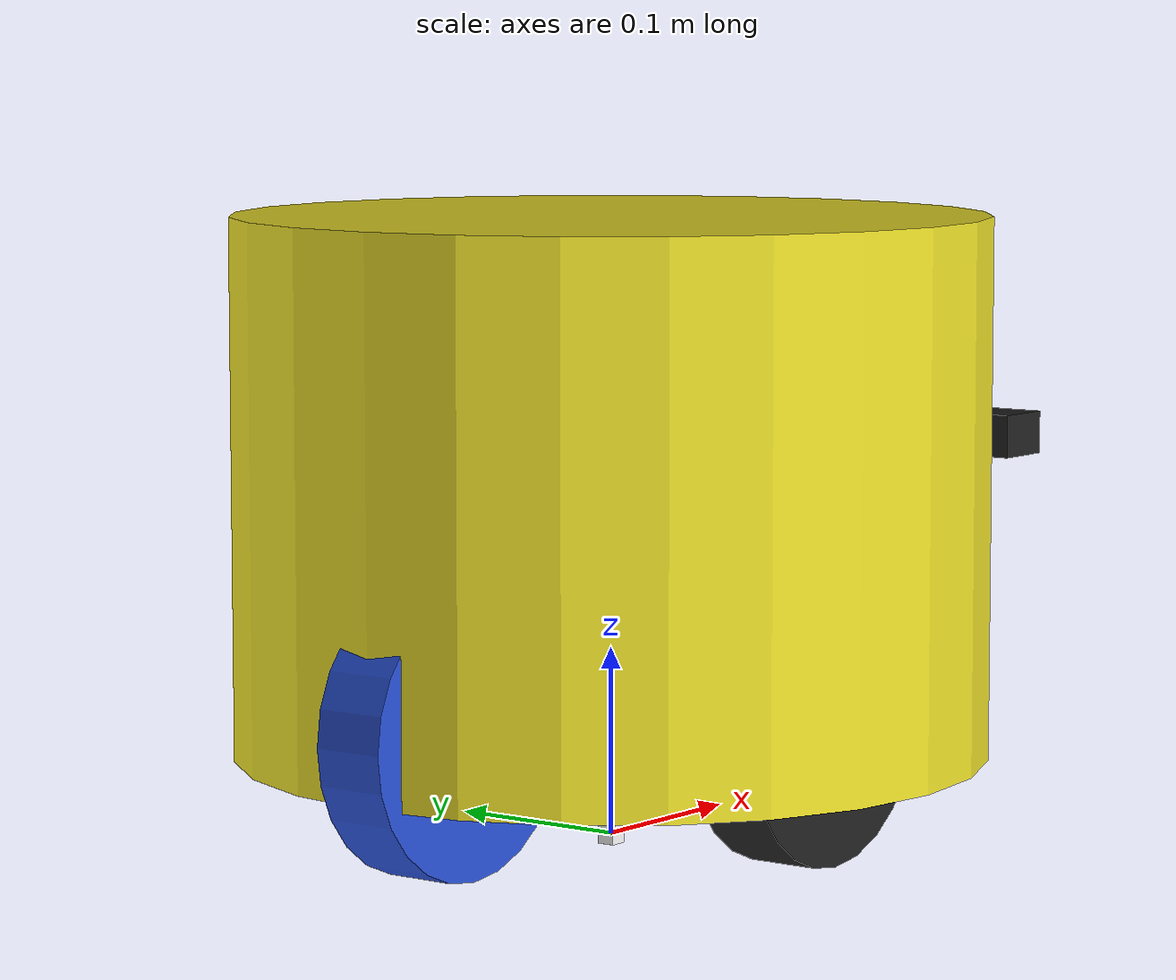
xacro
<?xml version="1.0"?>
<robot name="simple_diff_robot" xmlns:xacro="http://ros.org/wiki/xacro">

  <xacro:include filename="$(find simple_robot_description)/robots/simple_diff_robot.gazebo" />
  <xacro:include filename="$(find simple_robot_description)/robots/simple_diff_robot_materials.xacro" />

  <!-- Constant for the xacro model -->
  <xacro:property name="GROUND_CLEARANCE" value="0.0403"/>
  <xacro:property name="width" value="0.20" />
  <xacro:property name="xpsvwhloffset" value="0.1405" />
  <xacro:property name="yactwhloffset" value="0.2495" />
  <xacro:property name="bodylen" value="0.286" />
  <xacro:property name="wheel_w" value="0.039" />
  <xacro:property name="wheel_rad" value="0.075" />
  <xacro:property name="plat_rad" value="0.185" />
  <xacro:property name="plat_len" value="0.005" />
  <xacro:property name="HIGH_PLATFORM" value="0.286" />
  <xacro:property name="posz_laser" value="0.333" />
  <xacro:property name="posz_camera" value="1.059" />
  <!--xacro:property name="fwheel_rad" value="0.0376094" /-->
  <xacro:property name="fwheel_rad" value="0.075" />
  <xacro:property name="pi" value="3.1415" />

  <!--Mass values for each link in kg-->
  <xacro:property name="base_mass" value="30" />
  <xacro:property name="plat_mass" value="2" />
  <xacro:property name="actvwheel_mass" value="10" />
  <xacro:property name="psvwheel_mass" value="1" />

    <!-- base_footprint is a fictitious link(frame) that is on the ground right below base_link origin,
         navigation stack dedpends on this frame -->
    <link name="base_footprint">
      <visual>
        <origin xyz="0 0 0" rpy="0 0 0" />
        <geometry>
          <box size="0.01 0.01 0.01" />
        </geometry>

        <material name="White" />
      </visual>
    </link>

    <joint name="base_footprint_joint" type="fixed">
      <origin xyz="0 0 ${(bodylen/2)-GROUND_CLEARANCE-0.031+wheel_rad}" rpy="0 0 0" />
      <child link="base_link" />
      <parent link="base_footprint"/>
    </joint>

  <!--Base_link-->
  <link name="base_link">
    <visual>
      <geometry>
         <cylinder length="${bodylen}" radius="${width}"/>
      </geometry>
      <origin rpy="0 0 0" xyz="0 0 ${GROUND_CLEARANCE}"/>
      <!--origin rpy="0 0 0" xyz="0 0 0"/-->
      <material name="yellow"/>
    </visual>
    <collision>
      <geometry>
         <cylinder length="${bodylen}" radius="${width}"/>
      </geometry>
      <origin rpy="0 0 0" xyz="0 0 ${bodylen/2}"/>
    </collision>
    <inertial>
        <mass value="${base_mass}" />
        <origin rpy="0 0 0" xyz="0 0 ${GROUND_CLEARANCE}" />
        <inertia
          ixx="${(1/12) * base_mass * ( 3 * (0.1 * 0.1 + width * width) + bodylen)}" ixy="0.0" ixz="0.0"
          iyy="${(1/12) * base_mass * ( 3 * (0.1 * 0.1 + width * width) + bodylen)}" iyz="0.0"
          izz="${0.5 * base_mass * ( 0.1 * 0.1 + width * width)}" />
    </inertial>
  </link>

  <!--left and right wheel-->
  <xacro:macro name="rl_wheel" params="prefix reflect">
    <link name="${prefix}_wheel">
      <visual>
        <geometry>
          <cylinder length="${wheel_w}" radius="${wheel_rad}"/>
        </geometry>
        <origin rpy="${pi/2} 0 0" xyz="0 0 0"/>
        <material name="black"/>
      </visual>
      <collision>
        <geometry>
          <cylinder length="${wheel_w}" radius="${wheel_rad}"/>
        </geometry>
        <origin rpy="${pi/2} 0 0" xyz="0 0 0"/>
      </collision>
      <inertial>
        <mass value="0.010" />
        <origin rpy="${pi/2} 0 0" xyz="0 0 0" />
        <inertia
          ixx="${(1/12) * actvwheel_mass * (3 * wheel_rad * wheel_rad + wheel_w * wheel_w)}" ixy="0.0" ixz="0.0"
          iyy="${(1/12) * actvwheel_mass * (3 * wheel_rad * wheel_rad + wheel_w * wheel_w)}" iyz="0.0"
          izz="${0.5 * actvwheel_mass * wheel_rad * wheel_rad }" />
      </inertial>
    </link>
    <joint name="${prefix}_wheel_joint" type="continuous">
      <parent link="base_link"/>
      <child link="${prefix}_wheel"/>
      <axis xyz="0 1 0"/>
	  <origin xyz="0 ${-yactwhloffset*reflect/2} ${-(bodylen/2)+GROUND_CLEARANCE+0.031}" rpy="0 0 0"/>
    </joint>
    <transmission name="${prefix}_wheel_trans" type="SimpleTransmission">
      <type>transmission_interface/SimpleTransmission</type>
      <actuator name="${prefix}_wheel_motor">
        <mechanicalReduction>1</mechanicalReduction>
        <hardwareInterface>VelocityJointInterface</hardwareInterface>
      </actuator>
      <joint name="${prefix}_wheel_joint">
        <hardwareInterface>VelocityJointInterface</hardwareInterface>
      </joint>
    </transmission>
  </xacro:macro>
  <xacro:rl_wheel prefix="right" reflect="1" />
  <xacro:rl_wheel prefix="left" reflect="-1" />

  <!--front and back wheel-->
  <xacro:macro name="fb_wheel" params="prefix reflect">
    <link name="${prefix}_wheel">
      <visual>
        <geometry>
          <cylinder length="${wheel_w}" radius="${fwheel_rad}"/>
        </geometry>
        <origin rpy="${pi/2} 0 0" xyz="0 0 0"/>
        <material name="blue"/>
      </visual>
      <collision>
        <geometry>
          <cylinder length="${wheel_w}" radius="${fwheel_rad}"/>
        </geometry>
        <origin rpy="${pi/2} 0 0" xyz="0 0 0"/>
      </collision>
      <inertial>
        <mass value="0.010" />
        <origin rpy="${pi/2} 0 0" xyz="0 0 0" />
        <inertia
          ixx="${(1/12) * psvwheel_mass * (3 * fwheel_rad * fwheel_rad + wheel_w * wheel_w)}" ixy="0.0" ixz="0.0"
          iyy="${(1/12) * psvwheel_mass * (3 * fwheel_rad * fwheel_rad + wheel_w * wheel_w)}" iyz="0.0"
          izz="${0.5 * psvwheel_mass * fwheel_rad * fwheel_rad }" />
      </inertial>
    </link>
    <joint name="${prefix}_wheel_joint" type="continuous">
      <parent link="base_link"/>
      <child link="${prefix}_wheel"/>
      <axis xyz="0 1 0"/>
	  <!--origin xyz="${xpsvwhloffset*reflect} 0 ${ -(bodylen/2) + 0.02786}" rpy="0 0 0"/-->
	  <origin xyz="${xpsvwhloffset*reflect} 0 ${-(bodylen/2)+GROUND_CLEARANCE+0.031}" rpy="0 0 0"/>
    </joint>
    <transmission name="${prefix}_wheel_trans" type="SimpleTransmission">
      <type>transmission_interface/SimpleTransmission</type>
      <actuator name="${prefix}_wheel_motor">
        <mechanicalReduction>1</mechanicalReduction>
        <hardwareInterface>VelocityJointInterface</hardwareInterface>
      </actuator>
      <joint name="${prefix}_wheel_joint">
        <hardwareInterface>VelocityJointInterface</hardwareInterface>
      </joint>
    </transmission>
  </xacro:macro>
  <xacro:fb_wheel prefix="front" reflect="1"/>
  <xacro:fb_wheel prefix="back" reflect="-1"/>

  <!--CAMERA-->
  <link name="camera_link">
    <visual>
      <geometry>
        <box size="0.035 0.178 0.024"/>
      </geometry>
      <origin rpy="0 0 0" xyz="0 0 0"/>
      <material name="black"/>
    </visual>
    <collision>
      <origin xyz="0 0 0" rpy="0 0 0" />
      <geometry>
          <box size="0.035 0.185 0.025"/>
      </geometry>
    </collision>
    <inertial>
        <mass value="0.200" />
        <origin xyz="0 0 0" />
        <inertia ixx="5.8083e-4" ixy="0" ixz="0"
                 iyy="3.0833e-5" iyz="0"
                 izz="5.9083e-4" />
    </inertial>
  </link>
  <joint name="camera" type="fixed">
    <parent link="base_link"/>
    <child link="camera_link"/>
    <origin xyz="${width + 0.07} 0 0.05 " rpy="0 0 0"/>
  </joint>

  <!--LASER-->
  <link name="hokuyo_link">
    <visual>
      <geometry>
		  <box size="0.06 0.06 0.087"/>
      </geometry>
      <origin rpy="0 0 0" xyz="0 0 0"/>
      <material name="orange"/>
    </visual>
    <inertial>
        <mass value="0.270" />
        <origin xyz="0 0 0" />
        <inertia
          ixx="2.632e-4" ixy="0" ixz="0"
          iyy="2.632e-4" iyz="0"
          izz="1.62e-4" />
    </inertial>
    <collision>
        <origin xyz="0 0 -0.0115" rpy="0 0 0" />
        <geometry>
          <box size="0.058 0.058 0.087" />
        </geometry>
     </collision>
  </link>
  <joint name="base_laser" type="fixed">
    <parent link="base_link"/>
    <child link="hokuyo_link"/>
    <origin xyz="${width + 0.07} 0 ${GROUND_CLEARANCE-bodylen+posz_laser} " rpy="0 0 0"/>
  </joint>

</robot>
